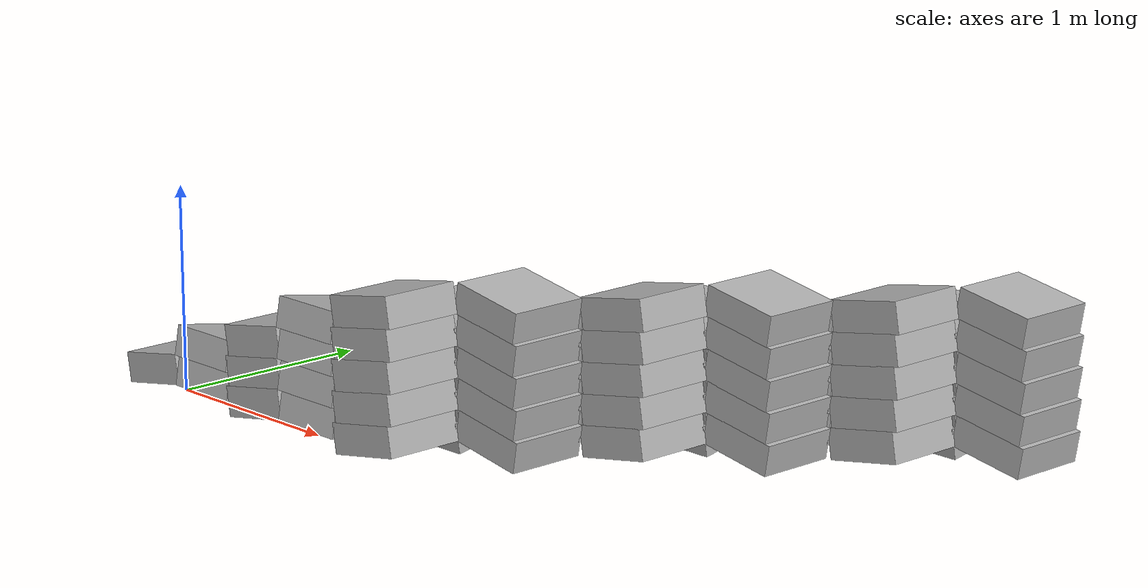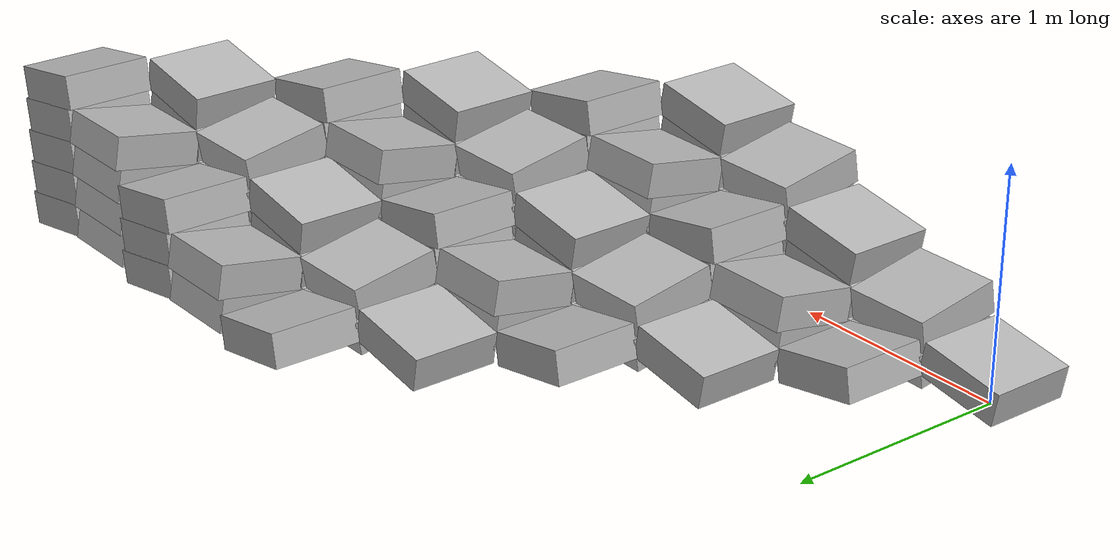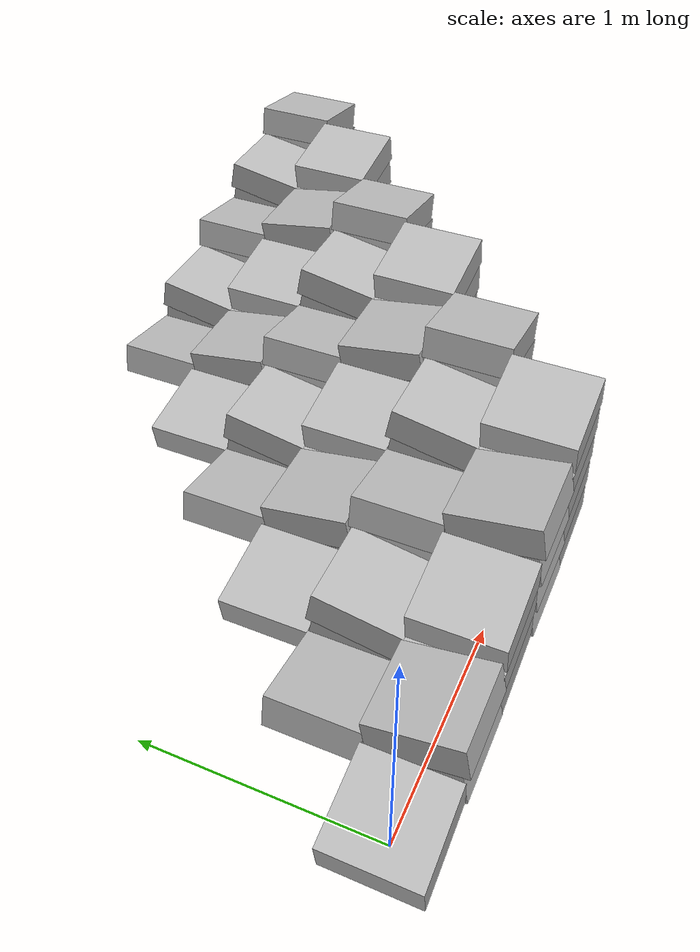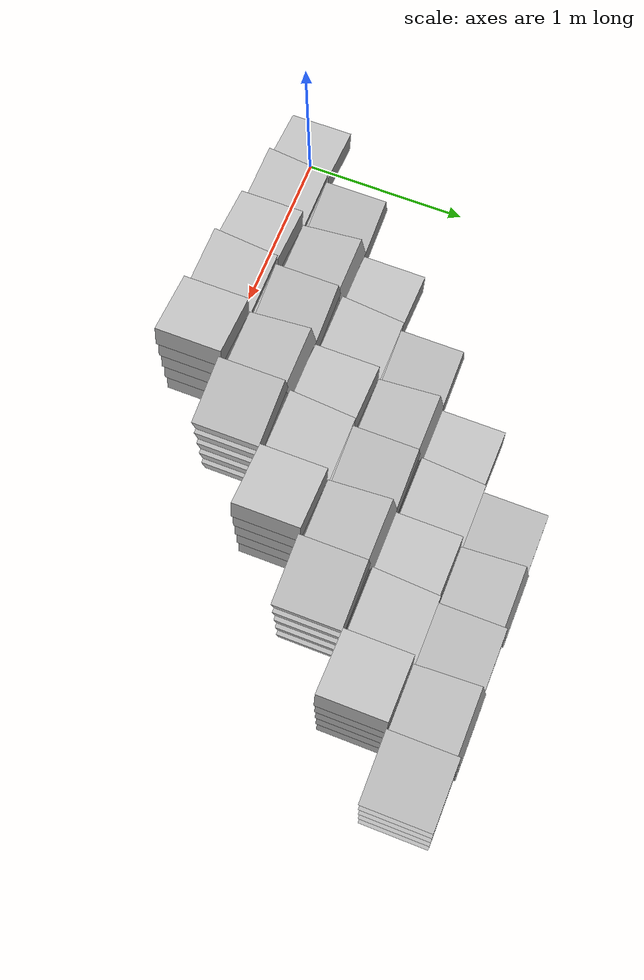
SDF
<?xml version="1.0" ?>
<sdf version="1.4">

  <model name="block_level_steps">
    <pose>0 0 0.073 0 0 0</pose>

          <include>
            <name>"block_0_0"</name>
            <pose> 0.0 0.0 0.073 -0.17453292519943295 0.0 1.570796 </pose>
            <uri>model://cinder_block_wide</uri>
          </include>

          <include>
            <name>"block_0_1"</name>
            <pose> 0.387353556 0.0 0.073 0.0 0.17453292519943295 1.570796 </pose>
            <uri>model://cinder_block_wide</uri>
          </include>

          <include>
            <name>"block_0_1"</name>
            <pose> 0.387353556 0.0 0.21899999999999997 0.0 0.17453292519943295 1.570796 </pose>
            <uri>model://cinder_block_wide</uri>
          </include>

          <include>
            <name>"block_0_2"</name>
            <pose> 0.774707112 0.0 0.365 -0.17453292519943295 0.0 1.570796 </pose>
            <uri>model://cinder_block_wide</uri>
          </include>

          <include>
            <name>"block_0_2"</name>
            <pose> 0.774707112 0.0 0.21899999999999997 -0.17453292519943295 0.0 1.570796 </pose>
            <uri>model://cinder_block_wide</uri>
          </include>

          <include>
            <name>"block_0_2"</name>
            <pose> 0.774707112 0.0 0.073 -0.17453292519943295 0.0 1.570796 </pose>
            <uri>model://cinder_block_wide</uri>
          </include>

          <include>
            <name>"block_0_3"</name>
            <pose> 1.162060668 0.0 0.5109999999999999 0.0 0.17453292519943295 1.570796 </pose>
            <uri>model://cinder_block_wide</uri>
          </include>

          <include>
            <name>"block_0_3"</name>
            <pose> 1.162060668 0.0 0.365 0.0 0.17453292519943295 1.570796 </pose>
            <uri>model://cinder_block_wide</uri>
          </include>

          <include>
            <name>"block_0_3"</name>
            <pose> 1.162060668 0.0 0.21899999999999997 0.0 0.17453292519943295 1.570796 </pose>
            <uri>model://cinder_block_wide</uri>
          </include>

          <include>
            <name>"block_0_3"</name>
            <pose> 1.162060668 0.0 0.073 0.0 0.17453292519943295 1.570796 </pose>
            <uri>model://cinder_block_wide</uri>
          </include>

          <include>
            <name>"block_0_4"</name>
            <pose> 1.549414224 0.0 0.6569999999999999 -0.17453292519943295 0.0 1.570796 </pose>
            <uri>model://cinder_block_wide</uri>
          </include>

          <include>
            <name>"block_0_4"</name>
            <pose> 1.549414224 0.0 0.5109999999999999 -0.17453292519943295 0.0 1.570796 </pose>
            <uri>model://cinder_block_wide</uri>
          </include>

          <include>
            <name>"block_0_4"</name>
            <pose> 1.549414224 0.0 0.365 -0.17453292519943295 0.0 1.570796 </pose>
            <uri>model://cinder_block_wide</uri>
          </include>

          <include>
            <name>"block_0_4"</name>
            <pose> 1.549414224 0.0 0.21899999999999997 -0.17453292519943295 0.0 1.570796 </pose>
            <uri>model://cinder_block_wide</uri>
          </include>

          <include>
            <name>"block_0_4"</name>
            <pose> 1.549414224 0.0 0.073 -0.17453292519943295 0.0 1.570796 </pose>
            <uri>model://cinder_block_wide</uri>
          </include>

          <include>
            <name>"block_1_0"</name>
            <pose> 0.387353556 0.387353556 0.073 0.17453292519943295 0.0 1.570796 </pose>
            <uri>model://cinder_block_wide</uri>
          </include>

          <include>
            <name>"block_1_1"</name>
            <pose> 0.774707112 0.387353556 0.073 0.0 -0.17453292519943295 1.570796 </pose>
            <uri>model://cinder_block_wide</uri>
          </include>

          <include>
            <name>"block_1_1"</name>
            <pose> 0.774707112 0.387353556 0.21899999999999997 0.0 -0.17453292519943295 1.570796 </pose>
            <uri>model://cinder_block_wide</uri>
          </include>

          <include>
            <name>"block_1_2"</name>
            <pose> 1.162060668 0.387353556 0.365 0.17453292519943295 0.0 1.570796 </pose>
            <uri>model://cinder_block_wide</uri>
          </include>

          <include>
            <name>"block_1_2"</name>
            <pose> 1.162060668 0.387353556 0.21899999999999997 0.17453292519943295 0.0 1.570796 </pose>
            <uri>model://cinder_block_wide</uri>
          </include>

          <include>
            <name>"block_1_2"</name>
            <pose> 1.162060668 0.387353556 0.073 0.17453292519943295 0.0 1.570796 </pose>
            <uri>model://cinder_block_wide</uri>
          </include>

          <include>
            <name>"block_1_3"</name>
            <pose> 1.549414224 0.387353556 0.5109999999999999 0.0 -0.17453292519943295 1.570796 </pose>
            <uri>model://cinder_block_wide</uri>
          </include>

          <include>
            <name>"block_1_3"</name>
            <pose> 1.549414224 0.387353556 0.365 0.0 -0.17453292519943295 1.570796 </pose>
            <uri>model://cinder_block_wide</uri>
          </include>

          <include>
            <name>"block_1_3"</name>
            <pose> 1.549414224 0.387353556 0.21899999999999997 0.0 -0.17453292519943295 1.570796 </pose>
            <uri>model://cinder_block_wide</uri>
          </include>

          <include>
            <name>"block_1_3"</name>
            <pose> 1.549414224 0.387353556 0.073 0.0 -0.17453292519943295 1.570796 </pose>
            <uri>model://cinder_block_wide</uri>
          </include>

          <include>
            <name>"block_1_4"</name>
            <pose> 1.9367677799999998 0.387353556 0.6569999999999999 0.17453292519943295 0.0 1.570796 </pose>
            <uri>model://cinder_block_wide</uri>
          </include>

          <include>
            <name>"block_1_4"</name>
            <pose> 1.9367677799999998 0.387353556 0.5109999999999999 0.17453292519943295 0.0 1.570796 </pose>
            <uri>model://cinder_block_wide</uri>
          </include>

          <include>
            <name>"block_1_4"</name>
            <pose> 1.9367677799999998 0.387353556 0.365 0.17453292519943295 0.0 1.570796 </pose>
            <uri>model://cinder_block_wide</uri>
          </include>

          <include>
            <name>"block_1_4"</name>
            <pose> 1.9367677799999998 0.387353556 0.21899999999999997 0.17453292519943295 0.0 1.570796 </pose>
            <uri>model://cinder_block_wide</uri>
          </include>

          <include>
            <name>"block_1_4"</name>
            <pose> 1.9367677799999998 0.387353556 0.073 0.17453292519943295 0.0 1.570796 </pose>
            <uri>model://cinder_block_wide</uri>
          </include>

          <include>
            <name>"block_2_0"</name>
            <pose> 0.774707112 0.774707112 0.073 -0.17453292519943295 0.0 1.570796 </pose>
            <uri>model://cinder_block_wide</uri>
          </include>

          <include>
            <name>"block_2_1"</name>
            <pose> 1.162060668 0.774707112 0.073 0.0 0.17453292519943295 1.570796 </pose>
            <uri>model://cinder_block_wide</uri>
          </include>

          <include>
            <name>"block_2_1"</name>
            <pose> 1.162060668 0.774707112 0.21899999999999997 0.0 0.17453292519943295 1.570796 </pose>
            <uri>model://cinder_block_wide</uri>
          </include>

          <include>
            <name>"block_2_2"</name>
            <pose> 1.549414224 0.774707112 0.365 -0.17453292519943295 0.0 1.570796 </pose>
            <uri>model://cinder_block_wide</uri>
          </include>

          <include>
            <name>"block_2_2"</name>
            <pose> 1.549414224 0.774707112 0.21899999999999997 -0.17453292519943295 0.0 1.570796 </pose>
            <uri>model://cinder_block_wide</uri>
          </include>

          <include>
            <name>"block_2_2"</name>
            <pose> 1.549414224 0.774707112 0.073 -0.17453292519943295 0.0 1.570796 </pose>
            <uri>model://cinder_block_wide</uri>
          </include>

          <include>
            <name>"block_2_3"</name>
            <pose> 1.93676778 0.774707112 0.5109999999999999 0.0 0.17453292519943295 1.570796 </pose>
            <uri>model://cinder_block_wide</uri>
          </include>

          <include>
            <name>"block_2_3"</name>
            <pose> 1.93676778 0.774707112 0.365 0.0 0.17453292519943295 1.570796 </pose>
            <uri>model://cinder_block_wide</uri>
          </include>

          <include>
            <name>"block_2_3"</name>
            <pose> 1.93676778 0.774707112 0.21899999999999997 0.0 0.17453292519943295 1.570796 </pose>
            <uri>model://cinder_block_wide</uri>
          </include>

          <include>
            <name>"block_2_3"</name>
            <pose> 1.93676778 0.774707112 0.073 0.0 0.17453292519943295 1.570796 </pose>
            <uri>model://cinder_block_wide</uri>
          </include>

          <include>
            <name>"block_2_4"</name>
            <pose> 2.324121336 0.774707112 0.6569999999999999 -0.17453292519943295 0.0 1.570796 </pose>
            <uri>model://cinder_block_wide</uri>
          </include>

          <include>
            <name>"block_2_4"</name>
            <pose> 2.324121336 0.774707112 0.5109999999999999 -0.17453292519943295 0.0 1.570796 </pose>
            <uri>model://cinder_block_wide</uri>
          </include>

          <include>
            <name>"block_2_4"</name>
            <pose> 2.324121336 0.774707112 0.365 -0.17453292519943295 0.0 1.570796 </pose>
            <uri>model://cinder_block_wide</uri>
          </include>

          <include>
            <name>"block_2_4"</name>
            <pose> 2.324121336 0.774707112 0.21899999999999997 -0.17453292519943295 0.0 1.570796 </pose>
            <uri>model://cinder_block_wide</uri>
          </include>

          <include>
            <name>"block_2_4"</name>
            <pose> 2.324121336 0.774707112 0.073 -0.17453292519943295 0.0 1.570796 </pose>
            <uri>model://cinder_block_wide</uri>
          </include>

          <include>
            <name>"block_3_0"</name>
            <pose> 1.162060668 1.162060668 0.073 0.17453292519943295 0.0 1.570796 </pose>
            <uri>model://cinder_block_wide</uri>
          </include>

          <include>
            <name>"block_3_1"</name>
            <pose> 1.549414224 1.162060668 0.073 0.0 -0.17453292519943295 1.570796 </pose>
            <uri>model://cinder_block_wide</uri>
          </include>

          <include>
            <name>"block_3_1"</name>
            <pose> 1.549414224 1.162060668 0.21899999999999997 0.0 -0.17453292519943295 1.570796 </pose>
            <uri>model://cinder_block_wide</uri>
          </include>

          <include>
            <name>"block_3_2"</name>
            <pose> 1.93676778 1.162060668 0.365 0.17453292519943295 0.0 1.570796 </pose>
            <uri>model://cinder_block_wide</uri>
          </include>

          <include>
            <name>"block_3_2"</name>
            <pose> 1.93676778 1.162060668 0.21899999999999997 0.17453292519943295 0.0 1.570796 </pose>
            <uri>model://cinder_block_wide</uri>
          </include>

          <include>
            <name>"block_3_2"</name>
            <pose> 1.93676778 1.162060668 0.073 0.17453292519943295 0.0 1.570796 </pose>
            <uri>model://cinder_block_wide</uri>
          </include>

          <include>
            <name>"block_3_3"</name>
            <pose> 2.324121336 1.162060668 0.5109999999999999 0.0 -0.17453292519943295 1.570796 </pose>
            <uri>model://cinder_block_wide</uri>
          </include>

          <include>
            <name>"block_3_3"</name>
            <pose> 2.324121336 1.162060668 0.365 0.0 -0.17453292519943295 1.570796 </pose>
            <uri>model://cinder_block_wide</uri>
          </include>

          <include>
            <name>"block_3_3"</name>
            <pose> 2.324121336 1.162060668 0.21899999999999997 0.0 -0.17453292519943295 1.570796 </pose>
            <uri>model://cinder_block_wide</uri>
          </include>

          <include>
            <name>"block_3_3"</name>
            <pose> 2.324121336 1.162060668 0.073 0.0 -0.17453292519943295 1.570796 </pose>
            <uri>model://cinder_block_wide</uri>
          </include>

          <include>
            <name>"block_3_4"</name>
            <pose> 2.711474892 1.162060668 0.6569999999999999 0.17453292519943295 0.0 1.570796 </pose>
            <uri>model://cinder_block_wide</uri>
          </include>

          <include>
            <name>"block_3_4"</name>
            <pose> 2.711474892 1.162060668 0.5109999999999999 0.17453292519943295 0.0 1.570796 </pose>
            <uri>model://cinder_block_wide</uri>
          </include>

          <include>
            <name>"block_3_4"</name>
            <pose> 2.711474892 1.162060668 0.365 0.17453292519943295 0.0 1.570796 </pose>
            <uri>model://cinder_block_wide</uri>
          </include>

          <include>
            <name>"block_3_4"</name>
            <pose> 2.711474892 1.162060668 0.21899999999999997 0.17453292519943295 0.0 1.570796 </pose>
            <uri>model://cinder_block_wide</uri>
          </include>

          <include>
            <name>"block_3_4"</name>
            <pose> 2.711474892 1.162060668 0.073 0.17453292519943295 0.0 1.570796 </pose>
            <uri>model://cinder_block_wide</uri>
          </include>

          <include>
            <name>"block_4_0"</name>
            <pose> 1.549414224 1.549414224 0.073 -0.17453292519943295 0.0 1.570796 </pose>
            <uri>model://cinder_block_wide</uri>
          </include>

          <include>
            <name>"block_4_1"</name>
            <pose> 1.9367677799999998 1.549414224 0.073 0.0 0.17453292519943295 1.570796 </pose>
            <uri>model://cinder_block_wide</uri>
          </include>

          <include>
            <name>"block_4_1"</name>
            <pose> 1.9367677799999998 1.549414224 0.21899999999999997 0.0 0.17453292519943295 1.570796 </pose>
            <uri>model://cinder_block_wide</uri>
          </include>

          <include>
            <name>"block_4_2"</name>
            <pose> 2.324121336 1.549414224 0.365 -0.17453292519943295 0.0 1.570796 </pose>
            <uri>model://cinder_block_wide</uri>
          </include>

          <include>
            <name>"block_4_2"</name>
            <pose> 2.324121336 1.549414224 0.21899999999999997 -0.17453292519943295 0.0 1.570796 </pose>
            <uri>model://cinder_block_wide</uri>
          </include>

          <include>
            <name>"block_4_2"</name>
            <pose> 2.324121336 1.549414224 0.073 -0.17453292519943295 0.0 1.570796 </pose>
            <uri>model://cinder_block_wide</uri>
          </include>

          <include>
            <name>"block_4_3"</name>
            <pose> 2.711474892 1.549414224 0.5109999999999999 0.0 0.17453292519943295 1.570796 </pose>
            <uri>model://cinder_block_wide</uri>
          </include>

          <include>
            <name>"block_4_3"</name>
            <pose> 2.711474892 1.549414224 0.365 0.0 0.17453292519943295 1.570796 </pose>
            <uri>model://cinder_block_wide</uri>
          </include>

          <include>
            <name>"block_4_3"</name>
            <pose> 2.711474892 1.549414224 0.21899999999999997 0.0 0.17453292519943295 1.570796 </pose>
            <uri>model://cinder_block_wide</uri>
          </include>

          <include>
            <name>"block_4_3"</name>
            <pose> 2.711474892 1.549414224 0.073 0.0 0.17453292519943295 1.570796 </pose>
            <uri>model://cinder_block_wide</uri>
          </include>

          <include>
            <name>"block_4_4"</name>
            <pose> 3.098828448 1.549414224 0.6569999999999999 -0.17453292519943295 0.0 1.570796 </pose>
            <uri>model://cinder_block_wide</uri>
          </include>

          <include>
            <name>"block_4_4"</name>
            <pose> 3.098828448 1.549414224 0.5109999999999999 -0.17453292519943295 0.0 1.570796 </pose>
            <uri>model://cinder_block_wide</uri>
          </include>

          <include>
            <name>"block_4_4"</name>
            <pose> 3.098828448 1.549414224 0.365 -0.17453292519943295 0.0 1.570796 </pose>
            <uri>model://cinder_block_wide</uri>
          </include>

          <include>
            <name>"block_4_4"</name>
            <pose> 3.098828448 1.549414224 0.21899999999999997 -0.17453292519943295 0.0 1.570796 </pose>
            <uri>model://cinder_block_wide</uri>
          </include>

          <include>
            <name>"block_4_4"</name>
            <pose> 3.098828448 1.549414224 0.073 -0.17453292519943295 0.0 1.570796 </pose>
            <uri>model://cinder_block_wide</uri>
          </include>

          <include>
            <name>"block_5_0"</name>
            <pose> 1.9367677799999998 1.9367677799999998 0.073 0.17453292519943295 0.0 1.570796 </pose>
            <uri>model://cinder_block_wide</uri>
          </include>

          <include>
            <name>"block_5_1"</name>
            <pose> 2.3241213359999997 1.9367677799999998 0.073 0.0 -0.17453292519943295 1.570796 </pose>
            <uri>model://cinder_block_wide</uri>
          </include>

          <include>
            <name>"block_5_1"</name>
            <pose> 2.3241213359999997 1.9367677799999998 0.21899999999999997 0.0 -0.17453292519943295 1.570796 </pose>
            <uri>model://cinder_block_wide</uri>
          </include>

          <include>
            <name>"block_5_2"</name>
            <pose> 2.711474892 1.9367677799999998 0.365 0.17453292519943295 0.0 1.570796 </pose>
            <uri>model://cinder_block_wide</uri>
          </include>

          <include>
            <name>"block_5_2"</name>
            <pose> 2.711474892 1.9367677799999998 0.21899999999999997 0.17453292519943295 0.0 1.570796 </pose>
            <uri>model://cinder_block_wide</uri>
          </include>

          <include>
            <name>"block_5_2"</name>
            <pose> 2.711474892 1.9367677799999998 0.073 0.17453292519943295 0.0 1.570796 </pose>
            <uri>model://cinder_block_wide</uri>
          </include>

          <include>
            <name>"block_5_3"</name>
            <pose> 3.098828448 1.9367677799999998 0.5109999999999999 0.0 -0.17453292519943295 1.570796 </pose>
            <uri>model://cinder_block_wide</uri>
          </include>

          <include>
            <name>"block_5_3"</name>
            <pose> 3.098828448 1.9367677799999998 0.365 0.0 -0.17453292519943295 1.570796 </pose>
            <uri>model://cinder_block_wide</uri>
          </include>

          <include>
            <name>"block_5_3"</name>
            <pose> 3.098828448 1.9367677799999998 0.21899999999999997 0.0 -0.17453292519943295 1.570796 </pose>
            <uri>model://cinder_block_wide</uri>
          </include>

          <include>
            <name>"block_5_3"</name>
            <pose> 3.098828448 1.9367677799999998 0.073 0.0 -0.17453292519943295 1.570796 </pose>
            <uri>model://cinder_block_wide</uri>
          </include>

          <include>
            <name>"block_5_4"</name>
            <pose> 3.486182004 1.9367677799999998 0.6569999999999999 0.17453292519943295 0.0 1.570796 </pose>
            <uri>model://cinder_block_wide</uri>
          </include>

          <include>
            <name>"block_5_4"</name>
            <pose> 3.486182004 1.9367677799999998 0.5109999999999999 0.17453292519943295 0.0 1.570796 </pose>
            <uri>model://cinder_block_wide</uri>
          </include>

          <include>
            <name>"block_5_4"</name>
            <pose> 3.486182004 1.9367677799999998 0.365 0.17453292519943295 0.0 1.570796 </pose>
            <uri>model://cinder_block_wide</uri>
          </include>

          <include>
            <name>"block_5_4"</name>
            <pose> 3.486182004 1.9367677799999998 0.21899999999999997 0.17453292519943295 0.0 1.570796 </pose>
            <uri>model://cinder_block_wide</uri>
          </include>

          <include>
            <name>"block_5_4"</name>
            <pose> 3.486182004 1.9367677799999998 0.073 0.17453292519943295 0.0 1.570796 </pose>
            <uri>model://cinder_block_wide</uri>
          </include>

  </model>

</sdf>

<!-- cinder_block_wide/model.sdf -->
<sdf version="1.5">
  <model name="cinder_block_wide">
    <link name="link">
      <inertial>
        <pose>0 0  0.146 0 0 0</pose>
        <mass>5</mass>
        <!-- approximate as uniform box 0.387 x 0.387 x 0.092 m -->
        <inertia>
          <ixx>0.06814656666666667</ixx>
          <ixy>0.0000</ixy>
          <iyy>0.06814656666666667</iyy>
          <ixz>0.0000</ixz>
          <iyz>0.0000</iyz>
          <izz>0.1248075</izz>
        </inertia>
      </inertial>
      <visual name="visual">
        <geometry>

          <box>
            <size>0.387353556 0.387353556 0.146</size>
          </box>
        </geometry>
      </visual>

      <collision name="block_collision">
       <pose>0 0 0 0 0 0</pose>
        <geometry>
          <box>
            <size>0.387353556 0.387353556 0.146</size>
          </box>
        </geometry>
        <surface>
          <contact>
            <ode>
              <max_vel>0.1</max_vel>
              <min_depth>0.001</min_depth>
            </ode>
          </contact>
          <friction>
            <ode>
              <mu>1.0</mu>
              <mu2>1.0</mu2>
            </ode>
          </friction>
        </surface>

      </collision>

    </link>
  </model>
</sdf>
